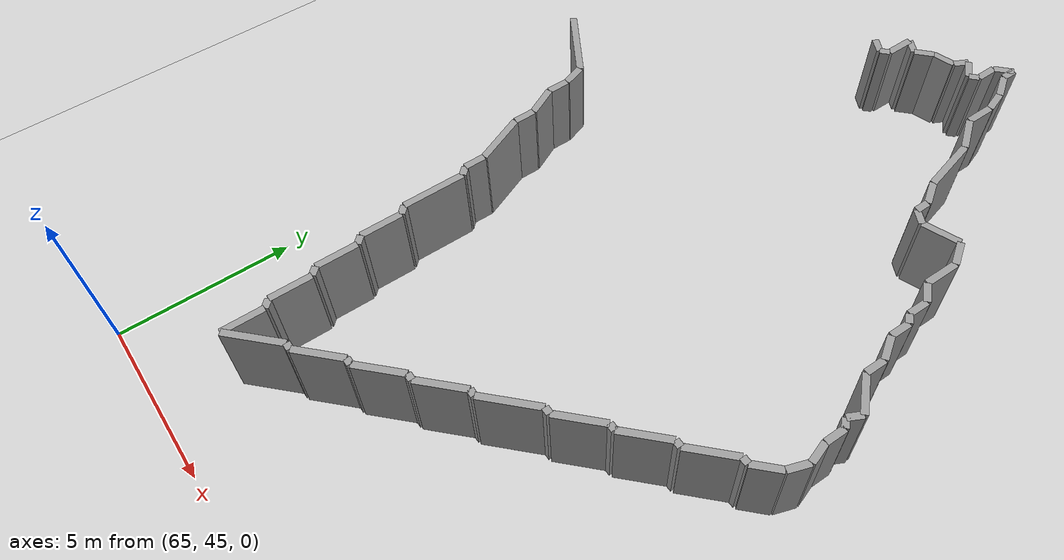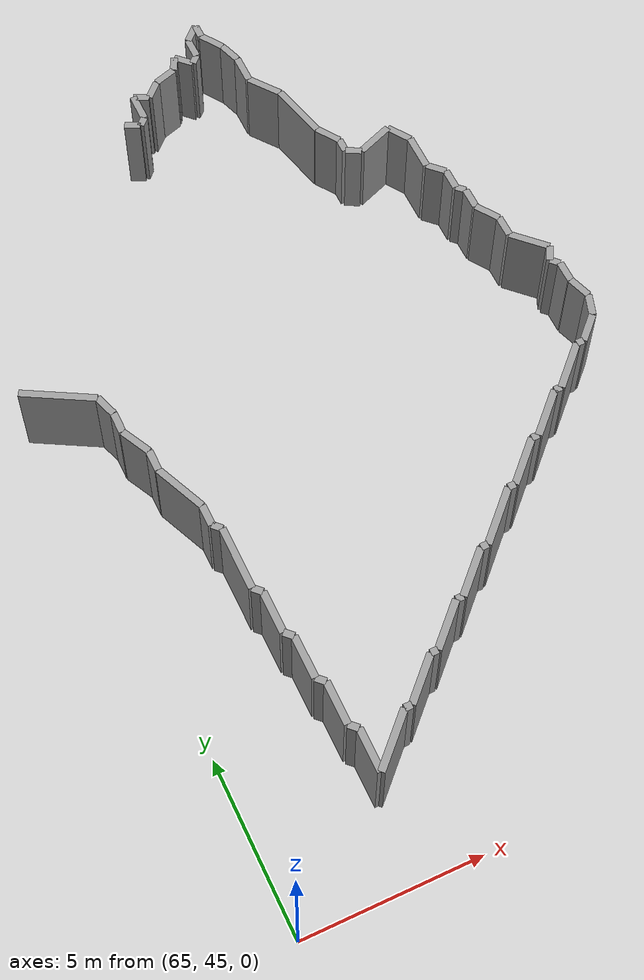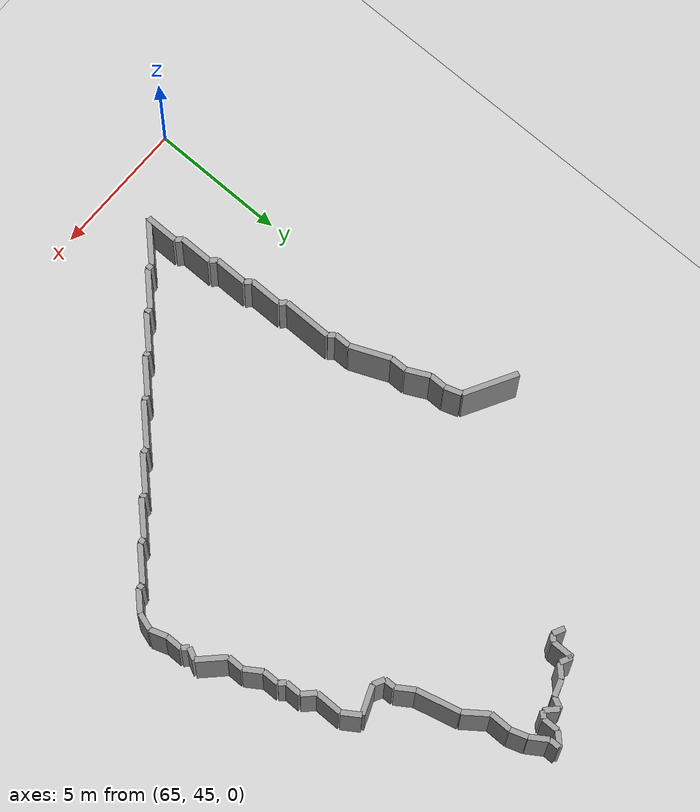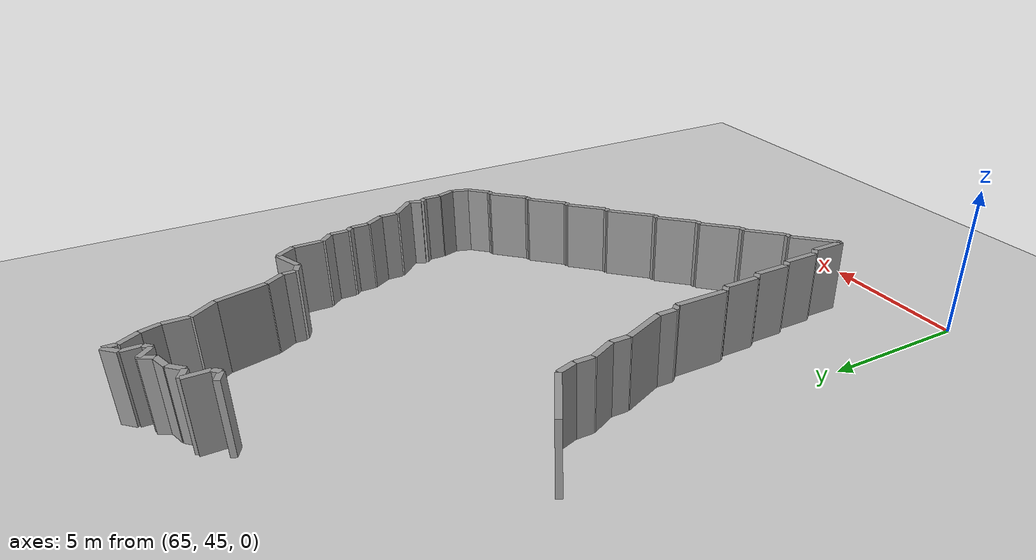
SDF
<sdf version="1.4">
 <world name="1_wall">
  <model name="ground_plane">
   <static>1</static>
   <link name="link">
    <collision name="collision">
     <geometry><plane><normal>0 0 1</normal><size>1000 1000</size></plane></geometry>
     <surface><friction><ode><mu>100</mu><mu2>50</mu2></ode></friction></surface>
    </collision>
    <visual name="visual">
     <cast_shadows>0</cast_shadows>
     <geometry><plane><normal>0 0 1</normal><size>10000 10000</size></plane></geometry>
     <material>
      <script><uri>file://media/materials/scripts/gazebo.material</uri><name>Gazebo/Grey</name></script>
     </material>
    </visual>
    <velocity_decay><linear>0</linear><angular>0</angular></velocity_decay>
   </link>
  </model>
  <model name="Wall_139">
   <static>1</static>
   <link name="Wall_139">
    <collision name="Wall_Collision_139">
     <geometry><box><size>0.4472135955 0.2 2.5</size></box></geometry>
     <pose>0 0 1.25 0 -0 0</pose>
    </collision>
    <visual name="Wall_Visual_139">
     <pose>0 0 1.25 0 -0 0</pose>
     <geometry><box><size>0.4472135955 0.2 2.5</size></box></geometry>
     <material>
      <script><uri>file://media/materials/scripts/gazebo.material</uri><name>Gazebo/Grey</name></script>
     </material>
    </visual>
    <velocity_decay><linear>0</linear><angular>0</angular></velocity_decay>
    <pose>70.2 67.1 0 0 0 -0.463647609001</pose>
   </link>
  </model>
  <model name="Wall_140">
   <static>1</static>
   <link name="Wall_140">
    <collision name="Wall_Collision_140">
     <geometry><box><size>0.282842712475 0.2 2.5</size></box></geometry>
     <pose>0 0 1.25 0 -0 0</pose>
    </collision>
    <visual name="Wall_Visual_140">
     <pose>0 0 1.25 0 -0 0</pose>
     <geometry><box><size>0.282842712475 0.2 2.5</size></box></geometry>
     <material>
      <script><uri>file://media/materials/scripts/gazebo.material</uri><name>Gazebo/Grey</name></script>
     </material>
    </visual>
    <velocity_decay><linear>0</linear><angular>0</angular></velocity_decay>
    <pose>70.5 67.1 0 0 0 0.785398163397</pose>
   </link>
  </model>
  <model name="Wall_141">
   <static>1</static>
   <link name="Wall_141">
    <collision name="Wall_Collision_141">
     <geometry><box><size>0.8 0.2 2.5</size></box></geometry>
     <pose>0 0 1.25 0 -0 0</pose>
    </collision>
    <visual name="Wall_Visual_141">
     <pose>0 0 1.25 0 -0 0</pose>
     <geometry><box><size>0.8 0.2 2.5</size></box></geometry>
     <material>
      <script><uri>file://media/materials/scripts/gazebo.material</uri><name>Gazebo/Grey</name></script>
     </material>
    </visual>
    <velocity_decay><linear>0</linear><angular>0</angular></velocity_decay>
    <pose>70.6 67.6 0 0 0 1.57079632679</pose>
   </link>
  </model>
  <model name="Wall_142">
   <static>1</static>
   <link name="Wall_142">
    <collision name="Wall_Collision_142">
     <geometry><box><size>0.4472135955 0.2 2.5</size></box></geometry>
     <pose>0 0 1.25 0 -0 0</pose>
    </collision>
    <visual name="Wall_Visual_142">
     <pose>0 0 1.25 0 -0 0</pose>
     <geometry><box><size>0.4472135955 0.2 2.5</size></box></geometry>
     <material>
      <script><uri>file://media/materials/scripts/gazebo.material</uri><name>Gazebo/Grey</name></script>
     </material>
    </visual>
    <velocity_decay><linear>0</linear><angular>0</angular></velocity_decay>
    <pose>70.8 67.9 0 0 0 -0.463647609001</pose>
   </link>
  </model>
  <model name="Wall_143">
   <static>1</static>
   <link name="Wall_143">
    <collision name="Wall_Collision_143">
     <geometry><box><size>0.565685424949 0.2 2.5</size></box></geometry>
     <pose>0 0 1.25 0 -0 0</pose>
    </collision>
    <visual name="Wall_Visual_143">
     <pose>0 0 1.25 0 -0 0</pose>
     <geometry><box><size>0.565685424949 0.2 2.5</size></box></geometry>
     <material>
      <script><uri>file://media/materials/scripts/gazebo.material</uri><name>Gazebo/Grey</name></script>
     </material>
    </visual>
    <velocity_decay><linear>0</linear><angular>0</angular></velocity_decay>
    <pose>71.2 68.0 0 0 0 0.785398163397</pose>
   </link>
  </model>
  <model name="Wall_144">
   <static>1</static>
   <link name="Wall_144">
    <collision name="Wall_Collision_144">
     <geometry><box><size>0.632455532034 0.2 2.5</size></box></geometry>
     <pose>0 0 1.25 0 -0 0</pose>
    </collision>
    <visual name="Wall_Visual_144">
     <pose>0 0 1.25 0 -0 0</pose>
     <geometry><box><size>0.632455532034 0.2 2.5</size></box></geometry>
     <material>
      <script><uri>file://media/materials/scripts/gazebo.material</uri><name>Gazebo/Grey</name></script>
     </material>
    </visual>
    <velocity_decay><linear>0</linear><angular>0</angular></velocity_decay>
    <pose>71.7 68.3 0 0 0 0.321750554397</pose>
   </link>
  </model>
  <model name="Wall_145">
   <static>1</static>
   <link name="Wall_145">
    <collision name="Wall_Collision_145">
     <geometry><box><size>0.4472135955 0.2 2.5</size></box></geometry>
     <pose>0 0 1.25 0 -0 0</pose>
    </collision>
    <visual name="Wall_Visual_145">
     <pose>0 0 1.25 0 -0 0</pose>
     <geometry><box><size>0.4472135955 0.2 2.5</size></box></geometry>
     <material>
      <script><uri>file://media/materials/scripts/gazebo.material</uri><name>Gazebo/Grey</name></script>
     </material>
    </visual>
    <velocity_decay><linear>0</linear><angular>0</angular></velocity_decay>
    <pose>72.1 68.6 0 0 0 1.10714871779</pose>
   </link>
  </model>
  <model name="Wall_146">
   <static>1</static>
   <link name="Wall_146">
    <collision name="Wall_Collision_146">
     <geometry><box><size>0.565685424949 0.2 2.5</size></box></geometry>
     <pose>0 0 1.25 0 -0 0</pose>
    </collision>
    <visual name="Wall_Visual_146">
     <pose>0 0 1.25 0 -0 0</pose>
     <geometry><box><size>0.565685424949 0.2 2.5</size></box></geometry>
     <material>
      <script><uri>file://media/materials/scripts/gazebo.material</uri><name>Gazebo/Grey</name></script>
     </material>
    </visual>
    <velocity_decay><linear>0</linear><angular>0</angular></velocity_decay>
    <pose>72.4 68.6 0 0 0 -0.785398163397</pose>
   </link>
  </model>
  <model name="Wall_147">
   <static>1</static>
   <link name="Wall_147">
    <collision name="Wall_Collision_147">
     <geometry><box><size>0.282842712475 0.2 2.5</size></box></geometry>
     <pose>0 0 1.25 0 -0 0</pose>
    </collision>
    <visual name="Wall_Visual_147">
     <pose>0 0 1.25 0 -0 0</pose>
     <geometry><box><size>0.282842712475 0.2 2.5</size></box></geometry>
     <material>
      <script><uri>file://media/materials/scripts/gazebo.material</uri><name>Gazebo/Grey</name></script>
     </material>
    </visual>
    <velocity_decay><linear>0</linear><angular>0</angular></velocity_decay>
    <pose>72.7 68.5 0 0 0 0.785398163397</pose>
   </link>
  </model>
  <model name="Wall_148">
   <static>1</static>
   <link name="Wall_148">
    <collision name="Wall_Collision_148">
     <geometry><box><size>0.6 0.2 2.5</size></box></geometry>
     <pose>0 0 1.25 0 -0 0</pose>
    </collision>
    <visual name="Wall_Visual_148">
     <pose>0 0 1.25 0 -0 0</pose>
     <geometry><box><size>0.6 0.2 2.5</size></box></geometry>
     <material>
      <script><uri>file://media/materials/scripts/gazebo.material</uri><name>Gazebo/Grey</name></script>
     </material>
    </visual>
    <velocity_decay><linear>0</linear><angular>0</angular></velocity_decay>
    <pose>72.8 68.9 0 0 0 1.57079632679</pose>
   </link>
  </model>
  <model name="Wall_149">
   <static>1</static>
   <link name="Wall_149">
    <collision name="Wall_Collision_149">
     <geometry><box><size>0.565685424949 0.2 2.5</size></box></geometry>
     <pose>0 0 1.25 0 -0 0</pose>
    </collision>
    <visual name="Wall_Visual_149">
     <pose>0 0 1.25 0 -0 0</pose>
     <geometry><box><size>0.565685424949 0.2 2.5</size></box></geometry>
     <material>
      <script><uri>file://media/materials/scripts/gazebo.material</uri><name>Gazebo/Grey</name></script>
     </material>
    </visual>
    <velocity_decay><linear>0</linear><angular>0</angular></velocity_decay>
    <pose>73.0 69.4 0 0 0 0.785398163397</pose>
   </link>
  </model>
  <model name="Wall_150">
   <static>1</static>
   <link name="Wall_150">
    <collision name="Wall_Collision_150">
     <geometry><box><size>0.4 0.2 2.5</size></box></geometry>
     <pose>0 0 1.25 0 -0 0</pose>
    </collision>
    <visual name="Wall_Visual_150">
     <pose>0 0 1.25 0 -0 0</pose>
     <geometry><box><size>0.4 0.2 2.5</size></box></geometry>
     <material>
      <script><uri>file://media/materials/scripts/gazebo.material</uri><name>Gazebo/Grey</name></script>
     </material>
    </visual>
    <velocity_decay><linear>0</linear><angular>0</angular></velocity_decay>
    <pose>73.2 69.4 0 0 0 -1.57079632679</pose>
   </link>
  </model>
  <model name="Wall_151">
   <static>1</static>
   <link name="Wall_151">
    <collision name="Wall_Collision_151">
     <geometry><box><size>0.721110255093 0.2 2.5</size></box></geometry>
     <pose>0 0 1.25 0 -0 0</pose>
    </collision>
    <visual name="Wall_Visual_151">
     <pose>0 0 1.25 0 -0 0</pose>
     <geometry><box><size>0.721110255093 0.2 2.5</size></box></geometry>
     <material>
      <script><uri>file://media/materials/scripts/gazebo.material</uri><name>Gazebo/Grey</name></script>
     </material>
    </visual>
    <velocity_decay><linear>0</linear><angular>0</angular></velocity_decay>
    <pose>73.4 68.9 0 0 0 -0.982793723247</pose>
   </link>
  </model>
  <model name="Wall_152">
   <static>1</static>
   <link name="Wall_152">
    <collision name="Wall_Collision_152">
     <geometry><box><size>0.632455532034 0.2 2.5</size></box></geometry>
     <pose>0 0 1.25 0 -0 0</pose>
    </collision>
    <visual name="Wall_Visual_152">
     <pose>0 0 1.25 0 -0 0</pose>
     <geometry><box><size>0.632455532034 0.2 2.5</size></box></geometry>
     <material>
      <script><uri>file://media/materials/scripts/gazebo.material</uri><name>Gazebo/Grey</name></script>
     </material>
    </visual>
    <velocity_decay><linear>0</linear><angular>0</angular></velocity_decay>
    <pose>73.7 68.3 0 0 0 -1.2490457724</pose>
   </link>
  </model>
  <model name="Wall_153">
   <static>1</static>
   <link name="Wall_153">
    <collision name="Wall_Collision_153">
     <geometry><box><size>0.8 0.2 2.5</size></box></geometry>
     <pose>0 0 1.25 0 -0 0</pose>
    </collision>
    <visual name="Wall_Visual_153">
     <pose>0 0 1.25 0 -0 0</pose>
     <geometry><box><size>0.8 0.2 2.5</size></box></geometry>
     <material>
      <script><uri>file://media/materials/scripts/gazebo.material</uri><name>Gazebo/Grey</name></script>
     </material>
    </visual>
    <velocity_decay><linear>0</linear><angular>0</angular></velocity_decay>
    <pose>73.8 67.6 0 0 0 -1.57079632679</pose>
   </link>
  </model>
  <model name="Wall_154">
   <static>1</static>
   <link name="Wall_154">
    <collision name="Wall_Collision_154">
     <geometry><box><size>1.0 0.2 2.5</size></box></geometry>
     <pose>0 0 1.25 0 -0 0</pose>
    </collision>
    <visual name="Wall_Visual_154">
     <pose>0 0 1.25 0 -0 0</pose>
     <geometry><box><size>1.0 0.2 2.5</size></box></geometry>
     <material>
      <script><uri>file://media/materials/scripts/gazebo.material</uri><name>Gazebo/Grey</name></script>
     </material>
    </visual>
    <velocity_decay><linear>0</linear><angular>0</angular></velocity_decay>
    <pose>74.1 66.8 0 0 0 -0.927295218002</pose>
   </link>
  </model>
  <model name="Wall_155">
   <static>1</static>
   <link name="Wall_155">
    <collision name="Wall_Collision_155">
     <geometry><box><size>1.64924225025 0.2 2.5</size></box></geometry>
     <pose>0 0 1.25 0 -0 0</pose>
    </collision>
    <visual name="Wall_Visual_155">
     <pose>0 0 1.25 0 -0 0</pose>
     <geometry><box><size>1.64924225025 0.2 2.5</size></box></geometry>
     <material>
      <script><uri>file://media/materials/scripts/gazebo.material</uri><name>Gazebo/Grey</name></script>
     </material>
    </visual>
    <velocity_decay><linear>0</linear><angular>0</angular></velocity_decay>
    <pose>74.6 65.6 0 0 0 -1.32581766367</pose>
   </link>
  </model>
  <model name="Wall_156">
   <static>1</static>
   <link name="Wall_156">
    <collision name="Wall_Collision_156">
     <geometry><box><size>0.721110255093 0.2 2.5</size></box></geometry>
     <pose>0 0 1.25 0 -0 0</pose>
    </collision>
    <visual name="Wall_Visual_156">
     <pose>0 0 1.25 0 -0 0</pose>
     <geometry><box><size>0.721110255093 0.2 2.5</size></box></geometry>
     <material>
      <script><uri>file://media/materials/scripts/gazebo.material</uri><name>Gazebo/Grey</name></script>
     </material>
    </visual>
    <velocity_decay><linear>0</linear><angular>0</angular></velocity_decay>
    <pose>75.0 64.5 0 0 0 -0.982793723247</pose>
   </link>
  </model>
  <model name="Wall_157">
   <static>1</static>
   <link name="Wall_157">
    <collision name="Wall_Collision_157">
     <geometry><box><size>0.4 0.2 2.5</size></box></geometry>
     <pose>0 0 1.25 0 -0 0</pose>
    </collision>
    <visual name="Wall_Visual_157">
     <pose>0 0 1.25 0 -0 0</pose>
     <geometry><box><size>0.4 0.2 2.5</size></box></geometry>
     <material>
      <script><uri>file://media/materials/scripts/gazebo.material</uri><name>Gazebo/Grey</name></script>
     </material>
    </visual>
    <velocity_decay><linear>0</linear><angular>0</angular></velocity_decay>
    <pose>75.2 64.0 0 0 0 -1.57079632679</pose>
   </link>
  </model>
  <model name="Wall_158">
   <static>1</static>
   <link name="Wall_158">
    <collision name="Wall_Collision_158">
     <geometry><box><size>0.4472135955 0.2 2.5</size></box></geometry>
     <pose>0 0 1.25 0 -0 0</pose>
    </collision>
    <visual name="Wall_Visual_158">
     <pose>0 0 1.25 0 -0 0</pose>
     <geometry><box><size>0.4472135955 0.2 2.5</size></box></geometry>
     <material>
      <script><uri>file://media/materials/scripts/gazebo.material</uri><name>Gazebo/Grey</name></script>
     </material>
    </visual>
    <velocity_decay><linear>0</linear><angular>0</angular></velocity_decay>
    <pose>75.4 63.7 0 0 0 -0.463647609001</pose>
   </link>
  </model>
  <model name="Wall_159">
   <static>1</static>
   <link name="Wall_159">
    <collision name="Wall_Collision_159">
     <geometry><box><size>1.07703296143 0.2 2.5</size></box></geometry>
     <pose>0 0 1.25 0 -0 0</pose>
    </collision>
    <visual name="Wall_Visual_159">
     <pose>0 0 1.25 0 -0 0</pose>
     <geometry><box><size>1.07703296143 0.2 2.5</size></box></geometry>
     <material>
      <script><uri>file://media/materials/scripts/gazebo.material</uri><name>Gazebo/Grey</name></script>
     </material>
    </visual>
    <velocity_decay><linear>0</linear><angular>0</angular></velocity_decay>
    <pose>76.1 63.8 0 0 0 0.380506377112</pose>
   </link>
  </model>
  <model name="Wall_160">
   <static>1</static>
   <link name="Wall_160">
    <collision name="Wall_Collision_160">
     <geometry><box><size>0.721110255093 0.2 2.5</size></box></geometry>
     <pose>0 0 1.25 0 -0 0</pose>
    </collision>
    <visual name="Wall_Visual_160">
     <pose>0 0 1.25 0 -0 0</pose>
     <geometry><box><size>0.721110255093 0.2 2.5</size></box></geometry>
     <material>
      <script><uri>file://media/materials/scripts/gazebo.material</uri><name>Gazebo/Grey</name></script>
     </material>
    </visual>
    <velocity_decay><linear>0</linear><angular>0</angular></velocity_decay>
    <pose>76.8 63.7 0 0 0 -0.982793723247</pose>
   </link>
  </model>
  <model name="Wall_161">
   <static>1</static>
   <link name="Wall_161">
    <collision name="Wall_Collision_161">
     <geometry><box><size>1.0 0.2 2.5</size></box></geometry>
     <pose>0 0 1.25 0 -0 0</pose>
    </collision>
    <visual name="Wall_Visual_161">
     <pose>0 0 1.25 0 -0 0</pose>
     <geometry><box><size>1.0 0.2 2.5</size></box></geometry>
     <material>
      <script><uri>file://media/materials/scripts/gazebo.material</uri><name>Gazebo/Grey</name></script>
     </material>
    </visual>
    <velocity_decay><linear>0</linear><angular>0</angular></velocity_decay>
    <pose>77.0 62.9 0 0 0 -1.57079632679</pose>
   </link>
  </model>
  <model name="Wall_162">
   <static>1</static>
   <link name="Wall_162">
    <collision name="Wall_Collision_162">
     <geometry><box><size>0.565685424949 0.2 2.5</size></box></geometry>
     <pose>0 0 1.25 0 -0 0</pose>
    </collision>
    <visual name="Wall_Visual_162">
     <pose>0 0 1.25 0 -0 0</pose>
     <geometry><box><size>0.565685424949 0.2 2.5</size></box></geometry>
     <material>
      <script><uri>file://media/materials/scripts/gazebo.material</uri><name>Gazebo/Grey</name></script>
     </material>
    </visual>
    <velocity_decay><linear>0</linear><angular>0</angular></velocity_decay>
    <pose>77.2 62.2 0 0 0 -0.785398163397</pose>
   </link>
  </model>
  <model name="Wall_163">
   <static>1</static>
   <link name="Wall_163">
    <collision name="Wall_Collision_163">
     <geometry><box><size>0.6 0.2 2.5</size></box></geometry>
     <pose>0 0 1.25 0 -0 0</pose>
    </collision>
    <visual name="Wall_Visual_163">
     <pose>0 0 1.25 0 -0 0</pose>
     <geometry><box><size>0.6 0.2 2.5</size></box></geometry>
     <material>
      <script><uri>file://media/materials/scripts/gazebo.material</uri><name>Gazebo/Grey</name></script>
     </material>
    </visual>
    <velocity_decay><linear>0</linear><angular>0</angular></velocity_decay>
    <pose>77.4 61.7 0 0 0 -1.57079632679</pose>
   </link>
  </model>
  <model name="Wall_164">
   <static>1</static>
   <link name="Wall_164">
    <collision name="Wall_Collision_164">
     <geometry><box><size>0.282842712475 0.2 2.5</size></box></geometry>
     <pose>0 0 1.25 0 -0 0</pose>
    </collision>
    <visual name="Wall_Visual_164">
     <pose>0 0 1.25 0 -0 0</pose>
     <geometry><box><size>0.282842712475 0.2 2.5</size></box></geometry>
     <material>
      <script><uri>file://media/materials/scripts/gazebo.material</uri><name>Gazebo/Grey</name></script>
     </material>
    </visual>
    <velocity_decay><linear>0</linear><angular>0</angular></velocity_decay>
    <pose>77.5 61.3 0 0 0 -0.785398163397</pose>
   </link>
  </model>
  <model name="Wall_165">
   <static>1</static>
   <link name="Wall_165">
    <collision name="Wall_Collision_165">
     <geometry><box><size>0.6 0.2 2.5</size></box></geometry>
     <pose>0 0 1.25 0 -0 0</pose>
    </collision>
    <visual name="Wall_Visual_165">
     <pose>0 0 1.25 0 -0 0</pose>
     <geometry><box><size>0.6 0.2 2.5</size></box></geometry>
     <material>
      <script><uri>file://media/materials/scripts/gazebo.material</uri><name>Gazebo/Grey</name></script>
     </material>
    </visual>
    <velocity_decay><linear>0</linear><angular>0</angular></velocity_decay>
    <pose>77.6 60.9 0 0 0 -1.57079632679</pose>
   </link>
  </model>
  <model name="Wall_166">
   <static>1</static>
   <link name="Wall_166">
    <collision name="Wall_Collision_166">
     <geometry><box><size>0.721110255093 0.2 2.5</size></box></geometry>
     <pose>0 0 1.25 0 -0 0</pose>
    </collision>
    <visual name="Wall_Visual_166">
     <pose>0 0 1.25 0 -0 0</pose>
     <geometry><box><size>0.721110255093 0.2 2.5</size></box></geometry>
     <material>
      <script><uri>file://media/materials/scripts/gazebo.material</uri><name>Gazebo/Grey</name></script>
     </material>
    </visual>
    <velocity_decay><linear>0</linear><angular>0</angular></velocity_decay>
    <pose>77.8 60.3 0 0 0 -0.982793723247</pose>
   </link>
  </model>
  <model name="Wall_167">
   <static>1</static>
   <link name="Wall_167">
    <collision name="Wall_Collision_167">
     <geometry><box><size>0.6 0.2 2.5</size></box></geometry>
     <pose>0 0 1.25 0 -0 0</pose>
    </collision>
    <visual name="Wall_Visual_167">
     <pose>0 0 1.25 0 -0 0</pose>
     <geometry><box><size>0.6 0.2 2.5</size></box></geometry>
     <material>
      <script><uri>file://media/materials/scripts/gazebo.material</uri><name>Gazebo/Grey</name></script>
     </material>
    </visual>
    <velocity_decay><linear>0</linear><angular>0</angular></velocity_decay>
    <pose>78.0 59.7 0 0 0 -1.57079632679</pose>
   </link>
  </model>
  <model name="Wall_168">
   <static>1</static>
   <link name="Wall_168">
    <collision name="Wall_Collision_168">
     <geometry><box><size>1.1313708499 0.2 2.5</size></box></geometry>
     <pose>0 0 1.25 0 -0 0</pose>
    </collision>
    <visual name="Wall_Visual_168">
     <pose>0 0 1.25 0 -0 0</pose>
     <geometry><box><size>1.1313708499 0.2 2.5</size></box></geometry>
     <material>
      <script><uri>file://media/materials/scripts/gazebo.material</uri><name>Gazebo/Grey</name></script>
     </material>
    </visual>
    <velocity_decay><linear>0</linear><angular>0</angular></velocity_decay>
    <pose>78.4 59.0 0 0 0 -0.785398163397</pose>
   </link>
  </model>
  <model name="Wall_169">
   <static>1</static>
   <link name="Wall_169">
    <collision name="Wall_Collision_169">
     <geometry><box><size>0.4472135955 0.2 2.5</size></box></geometry>
     <pose>0 0 1.25 0 -0 0</pose>
    </collision>
    <visual name="Wall_Visual_169">
     <pose>0 0 1.25 0 -0 0</pose>
     <geometry><box><size>0.4472135955 0.2 2.5</size></box></geometry>
     <material>
      <script><uri>file://media/materials/scripts/gazebo.material</uri><name>Gazebo/Grey</name></script>
     </material>
    </visual>
    <velocity_decay><linear>0</linear><angular>0</angular></velocity_decay>
    <pose>78.7 58.4 0 0 0 -2.0344439358</pose>
   </link>
  </model>
  <model name="Wall_170">
   <static>1</static>
   <link name="Wall_170">
    <collision name="Wall_Collision_170">
     <geometry><box><size>0.282842712475 0.2 2.5</size></box></geometry>
     <pose>0 0 1.25 0 -0 0</pose>
    </collision>
    <visual name="Wall_Visual_170">
     <pose>0 0 1.25 0 -0 0</pose>
     <geometry><box><size>0.282842712475 0.2 2.5</size></box></geometry>
     <material>
      <script><uri>file://media/materials/scripts/gazebo.material</uri><name>Gazebo/Grey</name></script>
     </material>
    </visual>
    <velocity_decay><linear>0</linear><angular>0</angular></velocity_decay>
    <pose>78.7 58.1 0 0 0 -0.785398163397</pose>
   </link>
  </model>
  <model name="Wall_171">
   <static>1</static>
   <link name="Wall_171">
    <collision name="Wall_Collision_171">
     <geometry><box><size>0.6 0.2 2.5</size></box></geometry>
     <pose>0 0 1.25 0 -0 0</pose>
    </collision>
    <visual name="Wall_Visual_171">
     <pose>0 0 1.25 0 -0 0</pose>
     <geometry><box><size>0.6 0.2 2.5</size></box></geometry>
     <material>
      <script><uri>file://media/materials/scripts/gazebo.material</uri><name>Gazebo/Grey</name></script>
     </material>
    </visual>
    <velocity_decay><linear>0</linear><angular>0</angular></velocity_decay>
    <pose>78.8 57.7 0 0 0 -1.57079632679</pose>
   </link>
  </model>
  <model name="Wall_172">
   <static>1</static>
   <link name="Wall_172">
    <collision name="Wall_Collision_172">
     <geometry><box><size>0.632455532034 0.2 2.5</size></box></geometry>
     <pose>0 0 1.25 0 -0 0</pose>
    </collision>
    <visual name="Wall_Visual_172">
     <pose>0 0 1.25 0 -0 0</pose>
     <geometry><box><size>0.632455532034 0.2 2.5</size></box></geometry>
     <material>
      <script><uri>file://media/materials/scripts/gazebo.material</uri><name>Gazebo/Grey</name></script>
     </material>
    </visual>
    <velocity_decay><linear>0</linear><angular>0</angular></velocity_decay>
    <pose>78.9 57.1 0 0 0 -1.2490457724</pose>
   </link>
  </model>
  <model name="Wall_173">
   <static>1</static>
   <link name="Wall_173">
    <collision name="Wall_Collision_173">
     <geometry><box><size>0.632455532034 0.2 2.5</size></box></geometry>
     <pose>0 0 1.25 0 -0 0</pose>
    </collision>
    <visual name="Wall_Visual_173">
     <pose>0 0 1.25 0 -0 0</pose>
     <geometry><box><size>0.632455532034 0.2 2.5</size></box></geometry>
     <material>
      <script><uri>file://media/materials/scripts/gazebo.material</uri><name>Gazebo/Grey</name></script>
     </material>
    </visual>
    <velocity_decay><linear>0</linear><angular>0</angular></velocity_decay>
    <pose>78.9 56.5 0 0 0 -1.89254688119</pose>
   </link>
  </model>
  <model name="Wall_174">
   <static>1</static>
   <link name="Wall_174">
    <collision name="Wall_Collision_174">
     <geometry><box><size>0.848528137424 0.2 2.5</size></box></geometry>
     <pose>0 0 1.25 0 -0 0</pose>
    </collision>
    <visual name="Wall_Visual_174">
     <pose>0 0 1.25 0 -0 0</pose>
     <geometry><box><size>0.848528137424 0.2 2.5</size></box></geometry>
     <material>
      <script><uri>file://media/materials/scripts/gazebo.material</uri><name>Gazebo/Grey</name></script>
     </material>
    </visual>
    <velocity_decay><linear>0</linear><angular>0</angular></velocity_decay>
    <pose>78.5 55.9 0 0 0 -2.35619449019</pose>
   </link>
  </model>
  <model name="Wall_175">
   <static>1</static>
   <link name="Wall_175">
    <collision name="Wall_Collision_175">
     <geometry><box><size>0.2 0.2 2.5</size></box></geometry>
     <pose>0 0 1.25 0 -0 0</pose>
    </collision>
    <visual name="Wall_Visual_175">
     <pose>0 0 1.25 0 -0 0</pose>
     <geometry><box><size>0.2 0.2 2.5</size></box></geometry>
     <material>
      <script><uri>file://media/materials/scripts/gazebo.material</uri><name>Gazebo/Grey</name></script>
     </material>
    </visual>
    <velocity_decay><linear>0</linear><angular>0</angular></velocity_decay>
    <pose>78.1 55.6 0 0 0 3.14159265359</pose>
   </link>
  </model>
  <model name="Wall_176">
   <static>1</static>
   <link name="Wall_176">
    <collision name="Wall_Collision_176">
     <geometry><box><size>1.41421356237 0.2 2.5</size></box></geometry>
     <pose>0 0 1.25 0 -0 0</pose>
    </collision>
    <visual name="Wall_Visual_176">
     <pose>0 0 1.25 0 -0 0</pose>
     <geometry><box><size>1.41421356237 0.2 2.5</size></box></geometry>
     <material>
      <script><uri>file://media/materials/scripts/gazebo.material</uri><name>Gazebo/Grey</name></script>
     </material>
    </visual>
    <velocity_decay><linear>0</linear><angular>0</angular></velocity_decay>
    <pose>77.5 55.1 0 0 0 -2.35619449019</pose>
   </link>
  </model>
  <model name="Wall_177">
   <static>1</static>
   <link name="Wall_177">
    <collision name="Wall_Collision_177">
     <geometry><box><size>0.2 0.2 2.5</size></box></geometry>
     <pose>0 0 1.25 0 -0 0</pose>
    </collision>
    <visual name="Wall_Visual_177">
     <pose>0 0 1.25 0 -0 0</pose>
     <geometry><box><size>0.2 0.2 2.5</size></box></geometry>
     <material>
      <script><uri>file://media/materials/scripts/gazebo.material</uri><name>Gazebo/Grey</name></script>
     </material>
    </visual>
    <velocity_decay><linear>0</linear><angular>0</angular></velocity_decay>
    <pose>76.9 54.6 0 0 0 3.14159265359</pose>
   </link>
  </model>
  <model name="Wall_178">
   <static>1</static>
   <link name="Wall_178">
    <collision name="Wall_Collision_178">
     <geometry><box><size>1.41421356237 0.2 2.5</size></box></geometry>
     <pose>0 0 1.25 0 -0 0</pose>
    </collision>
    <visual name="Wall_Visual_178">
     <pose>0 0 1.25 0 -0 0</pose>
     <geometry><box><size>1.41421356237 0.2 2.5</size></box></geometry>
     <material>
      <script><uri>file://media/materials/scripts/gazebo.material</uri><name>Gazebo/Grey</name></script>
     </material>
    </visual>
    <velocity_decay><linear>0</linear><angular>0</angular></velocity_decay>
    <pose>76.3 54.1 0 0 0 -2.35619449019</pose>
   </link>
  </model>
  <model name="Wall_179">
   <static>1</static>
   <link name="Wall_179">
    <collision name="Wall_Collision_179">
     <geometry><box><size>0.2 0.2 2.5</size></box></geometry>
     <pose>0 0 1.25 0 -0 0</pose>
    </collision>
    <visual name="Wall_Visual_179">
     <pose>0 0 1.25 0 -0 0</pose>
     <geometry><box><size>0.2 0.2 2.5</size></box></geometry>
     <material>
      <script><uri>file://media/materials/scripts/gazebo.material</uri><name>Gazebo/Grey</name></script>
     </material>
    </visual>
    <velocity_decay><linear>0</linear><angular>0</angular></velocity_decay>
    <pose>75.7 53.6 0 0 0 3.14159265359</pose>
   </link>
  </model>
  <model name="Wall_180">
   <static>1</static>
   <link name="Wall_180">
    <collision name="Wall_Collision_180">
     <geometry><box><size>1.41421356237 0.2 2.5</size></box></geometry>
     <pose>0 0 1.25 0 -0 0</pose>
    </collision>
    <visual name="Wall_Visual_180">
     <pose>0 0 1.25 0 -0 0</pose>
     <geometry><box><size>1.41421356237 0.2 2.5</size></box></geometry>
     <material>
      <script><uri>file://media/materials/scripts/gazebo.material</uri><name>Gazebo/Grey</name></script>
     </material>
    </visual>
    <velocity_decay><linear>0</linear><angular>0</angular></velocity_decay>
    <pose>75.1 53.1 0 0 0 -2.35619449019</pose>
   </link>
  </model>
  <model name="Wall_181">
   <static>1</static>
   <link name="Wall_181">
    <collision name="Wall_Collision_181">
     <geometry><box><size>0.2 0.2 2.5</size></box></geometry>
     <pose>0 0 1.25 0 -0 0</pose>
    </collision>
    <visual name="Wall_Visual_181">
     <pose>0 0 1.25 0 -0 0</pose>
     <geometry><box><size>0.2 0.2 2.5</size></box></geometry>
     <material>
      <script><uri>file://media/materials/scripts/gazebo.material</uri><name>Gazebo/Grey</name></script>
     </material>
    </visual>
    <velocity_decay><linear>0</linear><angular>0</angular></velocity_decay>
    <pose>74.5 52.6 0 0 0 3.14159265359</pose>
   </link>
  </model>
  <model name="Wall_182">
   <static>1</static>
   <link name="Wall_182">
    <collision name="Wall_Collision_182">
     <geometry><box><size>1.69705627485 0.2 2.5</size></box></geometry>
     <pose>0 0 1.25 0 -0 0</pose>
    </collision>
    <visual name="Wall_Visual_182">
     <pose>0 0 1.25 0 -0 0</pose>
     <geometry><box><size>1.69705627485 0.2 2.5</size></box></geometry>
     <material>
      <script><uri>file://media/materials/scripts/gazebo.material</uri><name>Gazebo/Grey</name></script>
     </material>
    </visual>
    <velocity_decay><linear>0</linear><angular>0</angular></velocity_decay>
    <pose>73.8 52.0 0 0 0 -2.35619449019</pose>
   </link>
  </model>
  <model name="Wall_183">
   <static>1</static>
   <link name="Wall_183">
    <collision name="Wall_Collision_183">
     <geometry><box><size>0.2 0.2 2.5</size></box></geometry>
     <pose>0 0 1.25 0 -0 0</pose>
    </collision>
    <visual name="Wall_Visual_183">
     <pose>0 0 1.25 0 -0 0</pose>
     <geometry><box><size>0.2 0.2 2.5</size></box></geometry>
     <material>
      <script><uri>file://media/materials/scripts/gazebo.material</uri><name>Gazebo/Grey</name></script>
     </material>
    </visual>
    <velocity_decay><linear>0</linear><angular>0</angular></velocity_decay>
    <pose>73.1 51.4 0 0 0 3.14159265359</pose>
   </link>
  </model>
  <model name="Wall_184">
   <static>1</static>
   <link name="Wall_184">
    <collision name="Wall_Collision_184">
     <geometry><box><size>1.41421356237 0.2 2.5</size></box></geometry>
     <pose>0 0 1.25 0 -0 0</pose>
    </collision>
    <visual name="Wall_Visual_184">
     <pose>0 0 1.25 0 -0 0</pose>
     <geometry><box><size>1.41421356237 0.2 2.5</size></box></geometry>
     <material>
      <script><uri>file://media/materials/scripts/gazebo.material</uri><name>Gazebo/Grey</name></script>
     </material>
    </visual>
    <velocity_decay><linear>0</linear><angular>0</angular></velocity_decay>
    <pose>72.5 50.9 0 0 0 -2.35619449019</pose>
   </link>
  </model>
  <model name="Wall_185">
   <static>1</static>
   <link name="Wall_185">
    <collision name="Wall_Collision_185">
     <geometry><box><size>0.2 0.2 2.5</size></box></geometry>
     <pose>0 0 1.25 0 -0 0</pose>
    </collision>
    <visual name="Wall_Visual_185">
     <pose>0 0 1.25 0 -0 0</pose>
     <geometry><box><size>0.2 0.2 2.5</size></box></geometry>
     <material>
      <script><uri>file://media/materials/scripts/gazebo.material</uri><name>Gazebo/Grey</name></script>
     </material>
    </visual>
    <velocity_decay><linear>0</linear><angular>0</angular></velocity_decay>
    <pose>71.9 50.4 0 0 0 3.14159265359</pose>
   </link>
  </model>
  <model name="Wall_186">
   <static>1</static>
   <link name="Wall_186">
    <collision name="Wall_Collision_186">
     <geometry><box><size>1.41421356237 0.2 2.5</size></box></geometry>
     <pose>0 0 1.25 0 -0 0</pose>
    </collision>
    <visual name="Wall_Visual_186">
     <pose>0 0 1.25 0 -0 0</pose>
     <geometry><box><size>1.41421356237 0.2 2.5</size></box></geometry>
     <material>
      <script><uri>file://media/materials/scripts/gazebo.material</uri><name>Gazebo/Grey</name></script>
     </material>
    </visual>
    <velocity_decay><linear>0</linear><angular>0</angular></velocity_decay>
    <pose>71.3 49.9 0 0 0 -2.35619449019</pose>
   </link>
  </model>
  <model name="Wall_187">
   <static>1</static>
   <link name="Wall_187">
    <collision name="Wall_Collision_187">
     <geometry><box><size>0.2 0.2 2.5</size></box></geometry>
     <pose>0 0 1.25 0 -0 0</pose>
    </collision>
    <visual name="Wall_Visual_187">
     <pose>0 0 1.25 0 -0 0</pose>
     <geometry><box><size>0.2 0.2 2.5</size></box></geometry>
     <material>
      <script><uri>file://media/materials/scripts/gazebo.material</uri><name>Gazebo/Grey</name></script>
     </material>
    </visual>
    <velocity_decay><linear>0</linear><angular>0</angular></velocity_decay>
    <pose>70.7 49.4 0 0 0 3.14159265359</pose>
   </link>
  </model>
  <model name="Wall_188">
   <static>1</static>
   <link name="Wall_188">
    <collision name="Wall_Collision_188">
     <geometry><box><size>1.41421356237 0.2 2.5</size></box></geometry>
     <pose>0 0 1.25 0 -0 0</pose>
    </collision>
    <visual name="Wall_Visual_188">
     <pose>0 0 1.25 0 -0 0</pose>
     <geometry><box><size>1.41421356237 0.2 2.5</size></box></geometry>
     <material>
      <script><uri>file://media/materials/scripts/gazebo.material</uri><name>Gazebo/Grey</name></script>
     </material>
    </visual>
    <velocity_decay><linear>0</linear><angular>0</angular></velocity_decay>
    <pose>70.1 48.9 0 0 0 -2.35619449019</pose>
   </link>
  </model>
  <model name="Wall_189">
   <static>1</static>
   <link name="Wall_189">
    <collision name="Wall_Collision_189">
     <geometry><box><size>0.2 0.2 2.5</size></box></geometry>
     <pose>0 0 1.25 0 -0 0</pose>
    </collision>
    <visual name="Wall_Visual_189">
     <pose>0 0 1.25 0 -0 0</pose>
     <geometry><box><size>0.2 0.2 2.5</size></box></geometry>
     <material>
      <script><uri>file://media/materials/scripts/gazebo.material</uri><name>Gazebo/Grey</name></script>
     </material>
    </visual>
    <velocity_decay><linear>0</linear><angular>0</angular></velocity_decay>
    <pose>69.5 48.4 0 0 0 3.14159265359</pose>
   </link>
  </model>
  <model name="Wall_190">
   <static>1</static>
   <link name="Wall_190">
    <collision name="Wall_Collision_190">
     <geometry><box><size>1.69705627485 0.2 2.5</size></box></geometry>
     <pose>0 0 1.25 0 -0 0</pose>
    </collision>
    <visual name="Wall_Visual_190">
     <pose>0 0 1.25 0 -0 0</pose>
     <geometry><box><size>1.69705627485 0.2 2.5</size></box></geometry>
     <material>
      <script><uri>file://media/materials/scripts/gazebo.material</uri><name>Gazebo/Grey</name></script>
     </material>
    </visual>
    <velocity_decay><linear>0</linear><angular>0</angular></velocity_decay>
    <pose>68.8 47.8 0 0 0 -2.35619449019</pose>
   </link>
  </model>
  <model name="Wall_191">
   <static>1</static>
   <link name="Wall_191">
    <collision name="Wall_Collision_191">
     <geometry><box><size>1.2 0.2 2.5</size></box></geometry>
     <pose>0 0 1.25 0 -0 0</pose>
    </collision>
    <visual name="Wall_Visual_191">
     <pose>0 0 1.25 0 -0 0</pose>
     <geometry><box><size>1.2 0.2 2.5</size></box></geometry>
     <material>
      <script><uri>file://media/materials/scripts/gazebo.material</uri><name>Gazebo/Grey</name></script>
     </material>
    </visual>
    <velocity_decay><linear>0</linear><angular>0</angular></velocity_decay>
    <pose>68.2 47.8 0 0 0 1.57079632679</pose>
   </link>
  </model>
  <model name="Wall_192">
   <static>1</static>
   <link name="Wall_192">
    <collision name="Wall_Collision_192">
     <geometry><box><size>0.282842712475 0.2 2.5</size></box></geometry>
     <pose>0 0 1.25 0 -0 0</pose>
    </collision>
    <visual name="Wall_Visual_192">
     <pose>0 0 1.25 0 -0 0</pose>
     <geometry><box><size>0.282842712475 0.2 2.5</size></box></geometry>
     <material>
      <script><uri>file://media/materials/scripts/gazebo.material</uri><name>Gazebo/Grey</name></script>
     </material>
    </visual>
    <velocity_decay><linear>0</linear><angular>0</angular></velocity_decay>
    <pose>68.1 48.5 0 0 0 2.35619449019</pose>
   </link>
  </model>
  <model name="Wall_193">
   <static>1</static>
   <link name="Wall_193">
    <collision name="Wall_Collision_193">
     <geometry><box><size>1.2 0.2 2.5</size></box></geometry>
     <pose>0 0 1.25 0 -0 0</pose>
    </collision>
    <visual name="Wall_Visual_193">
     <pose>0 0 1.25 0 -0 0</pose>
     <geometry><box><size>1.2 0.2 2.5</size></box></geometry>
     <material>
      <script><uri>file://media/materials/scripts/gazebo.material</uri><name>Gazebo/Grey</name></script>
     </material>
    </visual>
    <velocity_decay><linear>0</linear><angular>0</angular></velocity_decay>
    <pose>68.0 49.2 0 0 0 1.57079632679</pose>
   </link>
  </model>
  <model name="Wall_194">
   <static>1</static>
   <link name="Wall_194">
    <collision name="Wall_Collision_194">
     <geometry><box><size>0.282842712475 0.2 2.5</size></box></geometry>
     <pose>0 0 1.25 0 -0 0</pose>
    </collision>
    <visual name="Wall_Visual_194">
     <pose>0 0 1.25 0 -0 0</pose>
     <geometry><box><size>0.282842712475 0.2 2.5</size></box></geometry>
     <material>
      <script><uri>file://media/materials/scripts/gazebo.material</uri><name>Gazebo/Grey</name></script>
     </material>
    </visual>
    <velocity_decay><linear>0</linear><angular>0</angular></velocity_decay>
    <pose>67.9 49.9 0 0 0 2.35619449019</pose>
   </link>
  </model>
  <model name="Wall_195">
   <static>1</static>
   <link name="Wall_195">
    <collision name="Wall_Collision_195">
     <geometry><box><size>1.2 0.2 2.5</size></box></geometry>
     <pose>0 0 1.25 0 -0 0</pose>
    </collision>
    <visual name="Wall_Visual_195">
     <pose>0 0 1.25 0 -0 0</pose>
     <geometry><box><size>1.2 0.2 2.5</size></box></geometry>
     <material>
      <script><uri>file://media/materials/scripts/gazebo.material</uri><name>Gazebo/Grey</name></script>
     </material>
    </visual>
    <velocity_decay><linear>0</linear><angular>0</angular></velocity_decay>
    <pose>67.8 50.6 0 0 0 1.57079632679</pose>
   </link>
  </model>
  <model name="Wall_196">
   <static>1</static>
   <link name="Wall_196">
    <collision name="Wall_Collision_196">
     <geometry><box><size>0.282842712475 0.2 2.5</size></box></geometry>
     <pose>0 0 1.25 0 -0 0</pose>
    </collision>
    <visual name="Wall_Visual_196">
     <pose>0 0 1.25 0 -0 0</pose>
     <geometry><box><size>0.282842712475 0.2 2.5</size></box></geometry>
     <material>
      <script><uri>file://media/materials/scripts/gazebo.material</uri><name>Gazebo/Grey</name></script>
     </material>
    </visual>
    <velocity_decay><linear>0</linear><angular>0</angular></velocity_decay>
    <pose>67.7 51.3 0 0 0 2.35619449019</pose>
   </link>
  </model>
  <model name="Wall_197">
   <static>1</static>
   <link name="Wall_197">
    <collision name="Wall_Collision_197">
     <geometry><box><size>1.2 0.2 2.5</size></box></geometry>
     <pose>0 0 1.25 0 -0 0</pose>
    </collision>
    <visual name="Wall_Visual_197">
     <pose>0 0 1.25 0 -0 0</pose>
     <geometry><box><size>1.2 0.2 2.5</size></box></geometry>
     <material>
      <script><uri>file://media/materials/scripts/gazebo.material</uri><name>Gazebo/Grey</name></script>
     </material>
    </visual>
    <velocity_decay><linear>0</linear><angular>0</angular></velocity_decay>
    <pose>67.6 52.0 0 0 0 1.57079632679</pose>
   </link>
  </model>
  <model name="Wall_198">
   <static>1</static>
   <link name="Wall_198">
    <collision name="Wall_Collision_198">
     <geometry><box><size>0.282842712475 0.2 2.5</size></box></geometry>
     <pose>0 0 1.25 0 -0 0</pose>
    </collision>
    <visual name="Wall_Visual_198">
     <pose>0 0 1.25 0 -0 0</pose>
     <geometry><box><size>0.282842712475 0.2 2.5</size></box></geometry>
     <material>
      <script><uri>file://media/materials/scripts/gazebo.material</uri><name>Gazebo/Grey</name></script>
     </material>
    </visual>
    <velocity_decay><linear>0</linear><angular>0</angular></velocity_decay>
    <pose>67.5 52.7 0 0 0 2.35619449019</pose>
   </link>
  </model>
  <model name="Wall_199">
   <static>1</static>
   <link name="Wall_199">
    <collision name="Wall_Collision_199">
     <geometry><box><size>1.8 0.2 2.5</size></box></geometry>
     <pose>0 0 1.25 0 -0 0</pose>
    </collision>
    <visual name="Wall_Visual_199">
     <pose>0 0 1.25 0 -0 0</pose>
     <geometry><box><size>1.8 0.2 2.5</size></box></geometry>
     <material>
      <script><uri>file://media/materials/scripts/gazebo.material</uri><name>Gazebo/Grey</name></script>
     </material>
    </visual>
    <velocity_decay><linear>0</linear><angular>0</angular></velocity_decay>
    <pose>67.4 53.7 0 0 0 1.57079632679</pose>
   </link>
  </model>
  <model name="Wall_200">
   <static>1</static>
   <link name="Wall_200">
    <collision name="Wall_Collision_200">
     <geometry><box><size>0.282842712475 0.2 2.5</size></box></geometry>
     <pose>0 0 1.25 0 -0 0</pose>
    </collision>
    <visual name="Wall_Visual_200">
     <pose>0 0 1.25 0 -0 0</pose>
     <geometry><box><size>0.282842712475 0.2 2.5</size></box></geometry>
     <material>
      <script><uri>file://media/materials/scripts/gazebo.material</uri><name>Gazebo/Grey</name></script>
     </material>
    </visual>
    <velocity_decay><linear>0</linear><angular>0</angular></velocity_decay>
    <pose>67.3 54.7 0 0 0 2.35619449019</pose>
   </link>
  </model>
  <model name="Wall_201">
   <static>1</static>
   <link name="Wall_201">
    <collision name="Wall_Collision_201">
     <geometry><box><size>0.6 0.2 2.5</size></box></geometry>
     <pose>0 0 1.25 0 -0 0</pose>
    </collision>
    <visual name="Wall_Visual_201">
     <pose>0 0 1.25 0 -0 0</pose>
     <geometry><box><size>0.6 0.2 2.5</size></box></geometry>
     <material>
      <script><uri>file://media/materials/scripts/gazebo.material</uri><name>Gazebo/Grey</name></script>
     </material>
    </visual>
    <velocity_decay><linear>0</linear><angular>0</angular></velocity_decay>
    <pose>67.2 55.1 0 0 0 1.57079632679</pose>
   </link>
  </model>
  <model name="Wall_202">
   <static>1</static>
   <link name="Wall_202">
    <collision name="Wall_Collision_202">
     <geometry><box><size>1.52315462117 0.2 2.5</size></box></geometry>
     <pose>0 0 1.25 0 -0 0</pose>
    </collision>
    <visual name="Wall_Visual_202">
     <pose>0 0 1.25 0 -0 0</pose>
     <geometry><box><size>1.52315462117 0.2 2.5</size></box></geometry>
     <material>
      <script><uri>file://media/materials/scripts/gazebo.material</uri><name>Gazebo/Grey</name></script>
     </material>
    </visual>
    <velocity_decay><linear>0</linear><angular>0</angular></velocity_decay>
    <pose>66.9 56.1 0 0 0 1.97568811308</pose>
   </link>
  </model>
  <model name="Wall_203">
   <static>1</static>
   <link name="Wall_203">
    <collision name="Wall_Collision_203">
     <geometry><box><size>0.6 0.2 2.5</size></box></geometry>
     <pose>0 0 1.25 0 -0 0</pose>
    </collision>
    <visual name="Wall_Visual_203">
     <pose>0 0 1.25 0 -0 0</pose>
     <geometry><box><size>0.6 0.2 2.5</size></box></geometry>
     <material>
      <script><uri>file://media/materials/scripts/gazebo.material</uri><name>Gazebo/Grey</name></script>
     </material>
    </visual>
    <velocity_decay><linear>0</linear><angular>0</angular></velocity_decay>
    <pose>66.6 57.1 0 0 0 1.57079632679</pose>
   </link>
  </model>
  <model name="Wall_204">
   <static>1</static>
   <link name="Wall_204">
    <collision name="Wall_Collision_204">
     <geometry><box><size>0.894427191 0.2 2.5</size></box></geometry>
     <pose>0 0 1.25 0 -0 0</pose>
    </collision>
    <visual name="Wall_Visual_204">
     <pose>0 0 1.25 0 -0 0</pose>
     <geometry><box><size>0.894427191 0.2 2.5</size></box></geometry>
     <material>
      <script><uri>file://media/materials/scripts/gazebo.material</uri><name>Gazebo/Grey</name></script>
     </material>
    </visual>
    <velocity_decay><linear>0</linear><angular>0</angular></velocity_decay>
    <pose>66.4 57.8 0 0 0 2.0344439358</pose>
   </link>
  </model>
  <model name="Wall_205">
   <static>1</static>
   <link name="Wall_205">
    <collision name="Wall_Collision_205">
     <geometry><box><size>0.6 0.2 2.5</size></box></geometry>
     <pose>0 0 1.25 0 -0 0</pose>
    </collision>
    <visual name="Wall_Visual_205">
     <pose>0 0 1.25 0 -0 0</pose>
     <geometry><box><size>0.6 0.2 2.5</size></box></geometry>
     <material>
      <script><uri>file://media/materials/scripts/gazebo.material</uri><name>Gazebo/Grey</name></script>
     </material>
    </visual>
    <velocity_decay><linear>0</linear><angular>0</angular></velocity_decay>
    <pose>66.2 58.5 0 0 0 1.57079632679</pose>
   </link>
  </model>
  <model name="Wall_206">
   <static>1</static>
   <link name="Wall_206">
    <collision name="Wall_Collision_206">
     <geometry><box><size>0.632455532034 0.2 2.5</size></box></geometry>
     <pose>0 0 1.25 0 -0 0</pose>
    </collision>
    <visual name="Wall_Visual_206">
     <pose>0 0 1.25 0 -0 0</pose>
     <geometry><box><size>0.632455532034 0.2 2.5</size></box></geometry>
     <material>
      <script><uri>file://media/materials/scripts/gazebo.material</uri><name>Gazebo/Grey</name></script>
     </material>
    </visual>
    <velocity_decay><linear>0</linear><angular>0</angular></velocity_decay>
    <pose>66.1 59.1 0 0 0 1.89254688119</pose>
   </link>
  </model>
  <model name="Wall_207">
   <static>1</static>
   <link name="Wall_207">
    <collision name="Wall_Collision_207">
     <geometry><box><size>2.0591260282 0.2 2.5</size></box></geometry>
     <pose>0 0 1.25 0 -0 0</pose>
    </collision>
    <visual name="Wall_Visual_207">
     <pose>0 0 1.25 0 -0 0</pose>
     <geometry><box><size>2.0591260282 0.2 2.5</size></box></geometry>
     <material>
      <script><uri>file://media/materials/scripts/gazebo.material</uri><name>Gazebo/Grey</name></script>
     </material>
    </visual>
    <velocity_decay><linear>0</linear><angular>0</angular></velocity_decay>
    <pose>65.1 59.9 0 0 0 2.6344941492</pose>
   </link>
  </model>
 </world>
</sdf>
